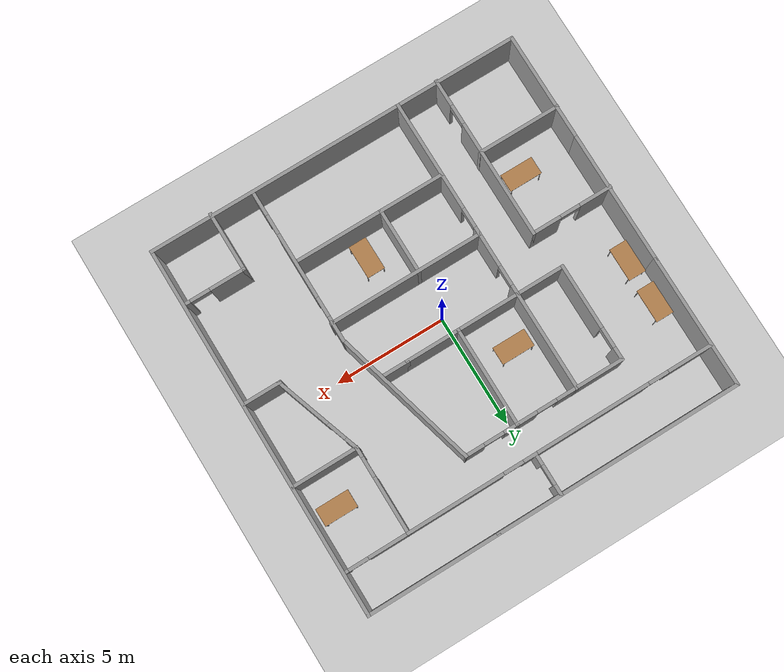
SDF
<sdf version="1.7">
 <world name="default">
  <light name="sun" type="directional">
   <pose>0 0 10 0 -0 0</pose>
   <diffuse>0.8 0.8 0.8 1</diffuse>
   <specular>0.2 0.2 0.2 1</specular>
   <attenuation>
    <range>1000</range>
    <constant>0.9</constant>
    <linear>0.01</linear>
    <quadratic>0.001</quadratic>
   </attenuation>
   <direction>-0.5 0.1 -0.9</direction>
   <spot><inner_angle>0</inner_angle><outer_angle>0</outer_angle><falloff>0</falloff></spot>
  </light>
  <model name="ground_plane">
   <static>1</static>
   <link name="link">
    <collision name="collision">
     <geometry><plane><normal>0 0 1</normal><size>100 100</size></plane></geometry>
     <surface><friction><ode><mu>100</mu><mu2>50</mu2></ode></friction></surface>
    </collision>
    <visual name="visual">
     <cast_shadows>0</cast_shadows>
     <geometry><plane><normal>0 0 1</normal><size>100 100</size></plane></geometry>
     <material>
      <script><uri>file://media/materials/scripts/gazebo.material</uri><name>Gazebo/Grey</name></script>
     </material>
    </visual>
   </link>
  </model>
  <gravity>0 0 -9.8</gravity>
  <magnetic_field>6e-06 2.3e-05 -4.2e-05</magnetic_field>
  <atmosphere type="adiabatic"/>
  <physics name="default_physics" default="0" type="ode">
   <max_step_size>0.001</max_step_size>
   <real_time_factor>1</real_time_factor>
   <real_time_update_rate>1000</real_time_update_rate>
  </physics>
  <scene><ambient>0.4 0.4 0.4 1</ambient><background>0.7 0.7 0.7 1</background><shadows>1</shadows></scene>
  <spherical_coordinates>
   <surface_model>EARTH_WGS84</surface_model>
   <latitude_deg>0</latitude_deg>
   <longitude_deg>0</longitude_deg>
   <elevation>0</elevation>
   <heading_deg>0</heading_deg>
  </spherical_coordinates>
  <model name="clinic">
   <pose>0.1393 0.22342 0 0 -0 0</pose>
   <link name="Wall_101">
    <collision name="Wall_101_Collision">
     <geometry><box><size>3.5 0.15 2.5</size></box></geometry>
     <pose>0 0 1.25 0 -0 0</pose>
    </collision>
    <visual name="Wall_101_Visual">
     <pose>0 0 1.25 0 -0 0</pose>
     <geometry><box><size>3.5 0.15 2.5</size></box></geometry>
     <material>
      <script><uri>file://media/materials/scripts/gazebo.material</uri><name>Gazebo/Grey</name></script>
      <ambient>1 1 1 1</ambient>
     </material>
     <meta><layer>0</layer></meta>
    </visual>
    <pose>-3.00153 -6.58035 0 0 -0 -1.5708</pose>
   </link>
   <link name="Wall_105">
    <pose>3.80231 -5.13793 0 0 -0 -1.5708</pose>
    <visual name="Wall_105_Visual_0">
     <pose>-2.95822 0 1.25 0 -0 0</pose>
     <geometry><box><size>0.333556 0.15 2.5</size></box></geometry>
     <material>
      <script><uri>file://media/materials/scripts/gazebo.material</uri><name>Gazebo/Grey</name></script>
      <ambient>1 1 1 1</ambient>
     </material>
     <meta><layer>0</layer></meta>
    </visual>
    <collision name="Wall_105_Collision_0">
     <geometry><box><size>0.333556 0.15 2.5</size></box></geometry>
     <pose>-2.95822 0 1.25 0 -0 0</pose>
    </collision>
    <visual name="Wall_105_Visual_1">
     <pose>-0.393618 0 1.25 0 -0 0</pose>
     <geometry><box><size>2.99565 0.15 2.5</size></box></geometry>
     <material>
      <script><uri>file://media/materials/scripts/gazebo.material</uri><name>Gazebo/Grey</name></script>
      <ambient>1 1 1 1</ambient>
     </material>
     <meta><layer>0</layer></meta>
    </visual>
    <collision name="Wall_105_Collision_1">
     <geometry><box><size>2.99565 0.15 2.5</size></box></geometry>
     <pose>-0.393618 0 1.25 0 -0 0</pose>
    </collision>
    <visual name="Wall_105_Visual_2">
     <pose>2.5646 0 1.25 0 -0 0</pose>
     <geometry><box><size>1.12079 0.15 2.5</size></box></geometry>
     <material>
      <script><uri>file://media/materials/scripts/gazebo.material</uri><name>Gazebo/Grey</name></script>
      <ambient>1 1 1 1</ambient>
     </material>
     <meta><layer>0</layer></meta>
    </visual>
    <collision name="Wall_105_Collision_2">
     <geometry><box><size>1.12079 0.15 2.5</size></box></geometry>
     <pose>2.5646 0 1.25 0 -0 0</pose>
    </collision>
    <visual name="Wall_105_Visual_3">
     <pose>-2.34144 0 2.25 0 -0 0</pose>
     <geometry><box><size>0.9 0.15 0.5</size></box></geometry>
     <material>
      <script><uri>file://media/materials/scripts/gazebo.material</uri><name>Gazebo/Grey</name></script>
      <ambient>1 1 1 1</ambient>
     </material>
     <meta><layer>0</layer></meta>
    </visual>
    <collision name="Wall_105_Collision_3">
     <geometry><box><size>0.9 0.15 0.5</size></box></geometry>
     <pose>-2.34144 0 2.25 0 -0 0</pose>
    </collision>
    <visual name="Wall_105_Visual_4">
     <pose>1.55421 0 2.25 0 -0 0</pose>
     <geometry><box><size>0.9 0.15 0.5</size></box></geometry>
     <material>
      <script><uri>file://media/materials/scripts/gazebo.material</uri><name>Gazebo/Grey</name></script>
      <ambient>1 1 1 1</ambient>
     </material>
     <meta><layer>0</layer></meta>
    </visual>
    <collision name="Wall_105_Collision_4">
     <geometry><box><size>0.9 0.15 0.5</size></box></geometry>
     <pose>1.55421 0 2.25 0 -0 0</pose>
    </collision>
   </link>
   <link name="Wall_107">
    <collision name="Wall_107_Collision">
     <geometry><box><size>4 0.15 2.5</size></box></geometry>
     <pose>0 0 1.25 0 -0 0</pose>
    </collision>
    <visual name="Wall_107_Visual">
     <pose>0 0 1.25 0 -0 0</pose>
     <geometry><box><size>4 0.15 2.5</size></box></geometry>
     <material>
      <script><uri>file://media/materials/scripts/gazebo.material</uri><name>Gazebo/Grey</name></script>
      <ambient>1 1 1 1</ambient>
     </material>
     <meta><layer>0</layer></meta>
    </visual>
    <pose>1.77347 -4.90536 0 0 -0 0</pose>
   </link>
   <link name="Wall_111">
    <pose>-6.64411 -0.95506 0 0 -0 0</pose>
    <visual name="Wall_111_Visual_0">
     <pose>-1.12575 0 1.25 0 -0 0</pose>
     <geometry><box><size>1.49849 0.15 2.5</size></box></geometry>
     <material>
      <script><uri>file://media/materials/scripts/gazebo.material</uri><name>Gazebo/Grey</name></script>
      <ambient>1 1 1 1</ambient>
     </material>
     <meta><layer>0</layer></meta>
    </visual>
    <collision name="Wall_111_Collision_0">
     <geometry><box><size>1.49849 0.15 2.5</size></box></geometry>
     <pose>-1.12575 0 1.25 0 -0 0</pose>
    </collision>
    <visual name="Wall_111_Visual_1">
     <pose>1.19925 0 1.25 0 -0 0</pose>
     <geometry><box><size>1.35151 0.15 2.5</size></box></geometry>
     <material>
      <script><uri>file://media/materials/scripts/gazebo.material</uri><name>Gazebo/Grey</name></script>
      <ambient>1 1 1 1</ambient>
     </material>
     <meta><layer>0</layer></meta>
    </visual>
    <collision name="Wall_111_Collision_1">
     <geometry><box><size>1.35151 0.15 2.5</size></box></geometry>
     <pose>1.19925 0 1.25 0 -0 0</pose>
    </collision>
    <visual name="Wall_111_Visual_2">
     <pose>0.073493 0 2.25 0 -0 0</pose>
     <geometry><box><size>0.9 0.15 0.5</size></box></geometry>
     <material>
      <script><uri>file://media/materials/scripts/gazebo.material</uri><name>Gazebo/Grey</name></script>
      <ambient>1 1 1 1</ambient>
     </material>
     <meta><layer>0</layer></meta>
    </visual>
    <collision name="Wall_111_Collision_2">
     <geometry><box><size>0.9 0.15 0.5</size></box></geometry>
     <pose>0.073493 0 2.25 0 -0 0</pose>
    </collision>
   </link>
   <link name="Wall_112">
    <pose>-4.84411 -4.63006 0 0 -0 -1.5708</pose>
    <visual name="Wall_112_Visual_0">
     <pose>-1.06896 0 1.25 0 -0 0</pose>
     <geometry><box><size>5.36208 0.15 2.5</size></box></geometry>
     <material>
      <script><uri>file://media/materials/scripts/gazebo.material</uri><name>Gazebo/Grey</name></script>
      <ambient>1 1 1 1</ambient>
     </material>
     <meta><layer>0</layer></meta>
    </visual>
    <collision name="Wall_112_Collision_0">
     <geometry><box><size>5.36208 0.15 2.5</size></box></geometry>
     <pose>-1.06896 0 1.25 0 -0 0</pose>
    </collision>
    <visual name="Wall_112_Visual_1">
     <pose>3.13104 0 1.25 0 -0 0</pose>
     <geometry><box><size>1.23792 0.15 2.5</size></box></geometry>
     <material>
      <script><uri>file://media/materials/scripts/gazebo.material</uri><name>Gazebo/Grey</name></script>
      <ambient>1 1 1 1</ambient>
     </material>
     <meta><layer>0</layer></meta>
    </visual>
    <collision name="Wall_112_Collision_1">
     <geometry><box><size>1.23792 0.15 2.5</size></box></geometry>
     <pose>3.13104 0 1.25 0 -0 0</pose>
    </collision>
    <visual name="Wall_112_Visual_2">
     <pose>2.06208 0 2.25 0 -0 0</pose>
     <geometry><box><size>0.9 0.15 0.5</size></box></geometry>
     <material>
      <script><uri>file://media/materials/scripts/gazebo.material</uri><name>Gazebo/Grey</name></script>
      <ambient>1 1 1 1</ambient>
     </material>
     <meta><layer>0</layer></meta>
    </visual>
    <collision name="Wall_112_Collision_2">
     <geometry><box><size>0.9 0.15 0.5</size></box></geometry>
     <pose>2.06208 0 2.25 0 -0 0</pose>
    </collision>
   </link>
   <link name="Wall_116">
    <collision name="Wall_116_Collision">
     <geometry><box><size>3.75 0.15 2.5</size></box></geometry>
     <pose>0 0 1.25 0 -0 0</pose>
    </collision>
    <visual name="Wall_116_Visual">
     <pose>0 0 1.25 0 -0 0</pose>
     <geometry><box><size>3.75 0.15 2.5</size></box></geometry>
     <material>
      <script><uri>file://media/materials/scripts/gazebo.material</uri><name>Gazebo/Grey</name></script>
      <ambient>1 1 1 1</ambient>
     </material>
     <meta><layer>0</layer></meta>
    </visual>
    <pose>-6.6255 -4.86753 0 0 -0 0</pose>
   </link>
   <link name="Wall_123">
    <pose>6.98904 -5.73718 0 0 -0 0</pose>
    <visual name="Wall_123_Visual_0">
     <pose>-0.558642 0 1.25 0 -0 0</pose>
     <geometry><box><size>1.63272 0.15 2.5</size></box></geometry>
     <material>
      <script><uri>file://media/materials/scripts/gazebo.material</uri><name>Gazebo/Grey</name></script>
      <ambient>1 1 1 1</ambient>
     </material>
     <meta><layer>0</layer></meta>
    </visual>
    <collision name="Wall_123_Collision_0">
     <geometry><box><size>1.63272 0.15 2.5</size></box></geometry>
     <pose>-0.558642 0 1.25 0 -0 0</pose>
    </collision>
    <visual name="Wall_123_Visual_1">
     <pose>1.26636 0 1.25 0 -0 0</pose>
     <geometry><box><size>0.217284 0.15 2.5</size></box></geometry>
     <material>
      <script><uri>file://media/materials/scripts/gazebo.material</uri><name>Gazebo/Grey</name></script>
      <ambient>1 1 1 1</ambient>
     </material>
     <meta><layer>0</layer></meta>
    </visual>
    <collision name="Wall_123_Collision_1">
     <geometry><box><size>0.217284 0.15 2.5</size></box></geometry>
     <pose>1.26636 0 1.25 0 -0 0</pose>
    </collision>
    <visual name="Wall_123_Visual_2">
     <pose>0.707716 0 2.25 0 -0 0</pose>
     <geometry><box><size>0.9 0.15 0.5</size></box></geometry>
     <material>
      <script><uri>file://media/materials/scripts/gazebo.material</uri><name>Gazebo/Grey</name></script>
      <ambient>1 1 1 1</ambient>
     </material>
     <meta><layer>0</layer></meta>
    </visual>
    <collision name="Wall_123_Collision_2">
     <geometry><box><size>0.9 0.15 0.5</size></box></geometry>
     <pose>0.707716 0 2.25 0 -0 0</pose>
    </collision>
   </link>
   <link name="Wall_126">
    <collision name="Wall_126_Collision">
     <geometry><box><size>2.75 0.15 2.5</size></box></geometry>
     <pose>0 0 1.25 0 -0 0</pose>
    </collision>
    <visual name="Wall_126_Visual">
     <pose>0 0 1.25 0 -0 0</pose>
     <geometry><box><size>2.75 0.15 2.5</size></box></geometry>
     <material>
      <script><uri>file://media/materials/scripts/gazebo.material</uri><name>Gazebo/Grey</name></script>
      <ambient>1 1 1 1</ambient>
     </material>
     <meta><layer>0</layer></meta>
    </visual>
    <pose>5.68904 -7.03718 0 0 -0 -1.5708</pose>
   </link>
   <link name="Wall_17">
    <pose>-0.255894 7.41218 0 0 -0 1.5708</pose>
    <visual name="Wall_17_Visual_0">
     <pose>-0.712032 0 1.25 0 -0 0</pose>
     <geometry><box><size>0.575935 0.15 2.5</size></box></geometry>
     <material>
      <script><uri>file://media/materials/scripts/gazebo.material</uri><name>Gazebo/Grey</name></script>
      <ambient>1 1 1 1</ambient>
     </material>
     <meta><layer>0</layer></meta>
    </visual>
    <collision name="Wall_17_Collision_0">
     <geometry><box><size>0.575935 0.15 2.5</size></box></geometry>
     <pose>-0.712032 0 1.25 0 -0 0</pose>
    </collision>
    <visual name="Wall_17_Visual_1">
     <pose>0.737968 0 1.25 0 -0 0</pose>
     <geometry><box><size>0.524065 0.15 2.5</size></box></geometry>
     <material>
      <script><uri>file://media/materials/scripts/gazebo.material</uri><name>Gazebo/Grey</name></script>
      <ambient>1 1 1 1</ambient>
     </material>
     <meta><layer>0</layer></meta>
    </visual>
    <collision name="Wall_17_Collision_1">
     <geometry><box><size>0.524065 0.15 2.5</size></box></geometry>
     <pose>0.737968 0 1.25 0 -0 0</pose>
    </collision>
    <visual name="Wall_17_Visual_2">
     <pose>0.025935 0 2.25 0 -0 0</pose>
     <geometry><box><size>0.9 0.15 0.5</size></box></geometry>
     <material>
      <script><uri>file://media/materials/scripts/gazebo.material</uri><name>Gazebo/Grey</name></script>
      <ambient>1 1 1 1</ambient>
     </material>
     <meta><layer>0</layer></meta>
    </visual>
    <collision name="Wall_17_Collision_2">
     <geometry><box><size>0.9 0.15 0.5</size></box></geometry>
     <pose>0.025935 0 2.25 0 -0 0</pose>
    </collision>
   </link>
   <link name="Wall_18">
    <collision name="Wall_18_Collision">
     <geometry><box><size>3 0.15 2.5</size></box></geometry>
     <pose>0 0 1.25 0 -0 0</pose>
    </collision>
    <visual name="Wall_18_Visual">
     <pose>0 0 1.25 0 -0 0</pose>
     <geometry><box><size>3 0.15 2.5</size></box></geometry>
     <material>
      <script><uri>file://media/materials/scripts/gazebo.material</uri><name>Gazebo/Grey</name></script>
      <ambient>1 1 1 1</ambient>
     </material>
     <meta><layer>0</layer></meta>
    </visual>
    <pose>1.16911 8.33718 0 0 -0 0</pose>
   </link>
   <link name="Wall_26">
    <collision name="Wall_26_Collision">
     <geometry><box><size>5 0.15 2.5</size></box></geometry>
     <pose>0 0 1.25 0 -0 0</pose>
    </collision>
    <visual name="Wall_26_Visual">
     <pose>0 0 1.25 0 -0 0</pose>
     <geometry><box><size>5 0.15 2.5</size></box></geometry>
     <material>
      <script><uri>file://media/materials/scripts/gazebo.material</uri><name>Gazebo/Grey</name></script>
      <ambient>1 1 1 1</ambient>
     </material>
     <meta><layer>0</layer></meta>
    </visual>
    <pose>-8.40589 -5.78782 0 0 -0 1.5708</pose>
   </link>
   <link name="Wall_28">
    <collision name="Wall_28_Collision">
     <geometry><box><size>6 0.15 2.5</size></box></geometry>
     <pose>0 0 1.25 0 -0 0</pose>
    </collision>
    <visual name="Wall_28_Visual">
     <pose>0 0 1.25 0 -0 0</pose>
     <geometry><box><size>6 0.15 2.5</size></box></geometry>
     <material>
      <script><uri>file://media/materials/scripts/gazebo.material</uri><name>Gazebo/Grey</name></script>
      <ambient>1 1 1 1</ambient>
     </material>
     <meta><layer>0</layer></meta>
    </visual>
    <pose>-8.40589 -0.43782 0 0 -0 1.5708</pose>
   </link>
   <link name="Wall_31">
    <collision name="Wall_31_Collision">
     <geometry><box><size>6 0.15 2.5</size></box></geometry>
     <pose>0 0 1.25 0 -0 0</pose>
    </collision>
    <visual name="Wall_31_Visual">
     <pose>0 0 1.25 0 -0 0</pose>
     <geometry><box><size>6 0.15 2.5</size></box></geometry>
     <material>
      <script><uri>file://media/materials/scripts/gazebo.material</uri><name>Gazebo/Grey</name></script>
      <ambient>1 1 1 1</ambient>
     </material>
     <meta><layer>0</layer></meta>
    </visual>
    <pose>-8.40589 5.41218 0 0 -0 1.5708</pose>
   </link>
   <link name="Wall_32">
    <collision name="Wall_32_Collision">
     <geometry><box><size>8.3 0.15 2.5</size></box></geometry>
     <pose>0 0 1.25 0 -0 0</pose>
    </collision>
    <visual name="Wall_32_Visual">
     <pose>0 0 1.25 0 -0 0</pose>
     <geometry><box><size>8.3 0.15 2.5</size></box></geometry>
     <material>
      <script><uri>file://media/materials/scripts/gazebo.material</uri><name>Gazebo/Grey</name></script>
      <ambient>1 1 1 1</ambient>
     </material>
     <meta><layer>0</layer></meta>
    </visual>
    <pose>-4.33089 8.33718 0 0 -0 0</pose>
   </link>
   <link name="Wall_34">
    <collision name="Wall_34_Collision">
     <geometry><box><size>6 0.15 2.5</size></box></geometry>
     <pose>0 0 1.25 0 -0 0</pose>
    </collision>
    <visual name="Wall_34_Visual">
     <pose>0 0 1.25 0 -0 0</pose>
     <geometry><box><size>6 0.15 2.5</size></box></geometry>
     <material>
      <script><uri>file://media/materials/scripts/gazebo.material</uri><name>Gazebo/Grey</name></script>
      <ambient>1 1 1 1</ambient>
     </material>
     <meta><layer>0</layer></meta>
    </visual>
    <pose>5.51911 8.33718 0 0 -0 0</pose>
   </link>
   <link name="Wall_40">
    <pose>5.53497 4.56283 0 0 -0 -1.5708</pose>
    <visual name="Wall_40_Visual_0">
     <pose>-0.699417 0 1.25 0 -0 0</pose>
     <geometry><box><size>2.60117 0.15 2.5</size></box></geometry>
     <material>
      <script><uri>file://media/materials/scripts/gazebo.material</uri><name>Gazebo/Grey</name></script>
      <ambient>1 1 1 1</ambient>
     </material>
     <meta><layer>0</layer></meta>
    </visual>
    <collision name="Wall_40_Collision_0">
     <geometry><box><size>2.60117 0.15 2.5</size></box></geometry>
     <pose>-0.699417 0 1.25 0 -0 0</pose>
    </collision>
    <visual name="Wall_40_Visual_1">
     <pose>1.75058 0 1.25 0 -0 0</pose>
     <geometry><box><size>0.498833 0.15 2.5</size></box></geometry>
     <material>
      <script><uri>file://media/materials/scripts/gazebo.material</uri><name>Gazebo/Grey</name></script>
      <ambient>1 1 1 1</ambient>
     </material>
     <meta><layer>0</layer></meta>
    </visual>
    <collision name="Wall_40_Collision_1">
     <geometry><box><size>0.498833 0.15 2.5</size></box></geometry>
     <pose>1.75058 0 1.25 0 -0 0</pose>
    </collision>
    <visual name="Wall_40_Visual_2">
     <pose>1.05117 0 2.25 0 -0 0</pose>
     <geometry><box><size>0.9 0.15 0.5</size></box></geometry>
     <material>
      <script><uri>file://media/materials/scripts/gazebo.material</uri><name>Gazebo/Grey</name></script>
      <ambient>1 1 1 1</ambient>
     </material>
     <meta><layer>0</layer></meta>
    </visual>
    <collision name="Wall_40_Collision_2">
     <geometry><box><size>0.9 0.15 0.5</size></box></geometry>
     <pose>1.05117 0 2.25 0 -0 0</pose>
    </collision>
   </link>
   <link name="Wall_41">
    <collision name="Wall_41_Collision">
     <geometry><box><size>3 0.15 2.5</size></box></geometry>
     <pose>0 0 1.25 0 -0 0</pose>
    </collision>
    <visual name="Wall_41_Visual">
     <pose>0 0 1.25 0 -0 0</pose>
     <geometry><box><size>3 0.15 2.5</size></box></geometry>
     <material>
      <script><uri>file://media/materials/scripts/gazebo.material</uri><name>Gazebo/Grey</name></script>
      <ambient>1 1 1 1</ambient>
     </material>
     <meta><layer>0</layer></meta>
    </visual>
    <pose>6.95997 2.63783 0 0 -0 0</pose>
   </link>
   <link name="Wall_44">
    <collision name="Wall_44_Collision">
     <geometry><box><size>16.75 0.15 2.5</size></box></geometry>
     <pose>0 0 1.25 0 -0 0</pose>
    </collision>
    <visual name="Wall_44_Visual">
     <pose>0 0 1.25 0 -0 0</pose>
     <geometry><box><size>16.75 0.15 2.5</size></box></geometry>
     <material>
      <script><uri>file://media/materials/scripts/gazebo.material</uri><name>Gazebo/Grey</name></script>
      <ambient>1 1 1 1</ambient>
     </material>
     <meta><layer>0</layer></meta>
    </visual>
    <pose>8.44411 0.037179 0 0 -0 -1.5708</pose>
   </link>
   <link name="Wall_45">
    <collision name="Wall_45_Collision">
     <geometry><box><size>17 0.15 2.5</size></box></geometry>
     <pose>0 0 1.25 0 -0 0</pose>
    </collision>
    <visual name="Wall_45_Visual">
     <pose>0 0 1.25 0 -0 0</pose>
     <geometry><box><size>17 0.15 2.5</size></box></geometry>
     <material>
      <script><uri>file://media/materials/scripts/gazebo.material</uri><name>Gazebo/Grey</name></script>
      <ambient>1 1 1 1</ambient>
     </material>
     <meta><layer>0</layer></meta>
    </visual>
    <pose>0.019106 -8.26282 0 0 -0 3.14159</pose>
   </link>
   <link name="Wall_48">
    <pose>6.95997 6.48783 0 0 -0 0</pose>
    <visual name="Wall_48_Visual_0">
     <pose>-0.566156 0 1.25 0 -0 0</pose>
     <geometry><box><size>1.86769 0.15 2.5</size></box></geometry>
     <material>
      <script><uri>file://media/materials/scripts/gazebo.material</uri><name>Gazebo/Grey</name></script>
      <ambient>1 1 1 1</ambient>
     </material>
     <meta><layer>0</layer></meta>
    </visual>
    <collision name="Wall_48_Collision_0">
     <geometry><box><size>1.86769 0.15 2.5</size></box></geometry>
     <pose>-0.566156 0 1.25 0 -0 0</pose>
    </collision>
    <visual name="Wall_48_Visual_1">
     <pose>1.38384 0 1.25 0 -0 0</pose>
     <geometry><box><size>0.232312 0.15 2.5</size></box></geometry>
     <material>
      <script><uri>file://media/materials/scripts/gazebo.material</uri><name>Gazebo/Grey</name></script>
      <ambient>1 1 1 1</ambient>
     </material>
     <meta><layer>0</layer></meta>
    </visual>
    <collision name="Wall_48_Collision_1">
     <geometry><box><size>0.232312 0.15 2.5</size></box></geometry>
     <pose>1.38384 0 1.25 0 -0 0</pose>
    </collision>
    <visual name="Wall_48_Visual_2">
     <pose>0.817688 0 2.25 0 -0 0</pose>
     <geometry><box><size>0.9 0.15 0.5</size></box></geometry>
     <material>
      <script><uri>file://media/materials/scripts/gazebo.material</uri><name>Gazebo/Grey</name></script>
      <ambient>1 1 1 1</ambient>
     </material>
     <meta><layer>0</layer></meta>
    </visual>
    <collision name="Wall_48_Collision_2">
     <geometry><box><size>0.9 0.15 0.5</size></box></geometry>
     <pose>0.817688 0 2.25 0 -0 0</pose>
    </collision>
   </link>
   <link name="Wall_50">
    <pose>2.63954 6.4875 0 0 -0 -3.14148</pose>
    <visual name="Wall_50_Visual_0">
     <pose>-0.766071 0 1.25 0 -0 0</pose>
     <geometry><box><size>4.40875 0.15 2.5</size></box></geometry>
     <material>
      <script><uri>file://media/materials/scripts/gazebo.material</uri><name>Gazebo/Grey</name></script>
      <ambient>1 1 1 1</ambient>
     </material>
     <meta><layer>0</layer></meta>
    </visual>
    <collision name="Wall_50_Collision_0">
     <geometry><box><size>4.40875 0.15 2.5</size></box></geometry>
     <pose>-0.766071 0 1.25 0 -0 0</pose>
    </collision>
    <visual name="Wall_50_Visual_1">
     <pose>2.65437 0 1.25 0 -0 0</pose>
     <geometry><box><size>0.632142 0.15 2.5</size></box></geometry>
     <material>
      <script><uri>file://media/materials/scripts/gazebo.material</uri><name>Gazebo/Grey</name></script>
      <ambient>1 1 1 1</ambient>
     </material>
     <meta><layer>0</layer></meta>
    </visual>
    <collision name="Wall_50_Collision_1">
     <geometry><box><size>0.632142 0.15 2.5</size></box></geometry>
     <pose>2.65437 0 1.25 0 -0 0</pose>
    </collision>
    <visual name="Wall_50_Visual_2">
     <pose>1.8883 0 2.25 0 -0 0</pose>
     <geometry><box><size>0.9 0.15 0.5</size></box></geometry>
     <material>
      <script><uri>file://media/materials/scripts/gazebo.material</uri><name>Gazebo/Grey</name></script>
      <ambient>1 1 1 1</ambient>
     </material>
     <meta><layer>0</layer></meta>
    </visual>
    <collision name="Wall_50_Collision_2">
     <geometry><box><size>0.9 0.15 0.5</size></box></geometry>
     <pose>1.8883 0 2.25 0 -0 0</pose>
    </collision>
   </link>
   <link name="Wall_52">
    <pose>6.16655 0.75794 0 0 -0 -1.24668</pose>
    <visual name="Wall_52_Visual_0">
     <pose>-1.74079 0 1.25 0 -0 0</pose>
     <geometry><box><size>0.634718 0.15 2.5</size></box></geometry>
     <material>
      <script><uri>file://media/materials/scripts/gazebo.material</uri><name>Gazebo/Grey</name></script>
      <ambient>1 1 1 1</ambient>
     </material>
     <meta><layer>0</layer></meta>
    </visual>
    <collision name="Wall_52_Collision_0">
     <geometry><box><size>0.634718 0.15 2.5</size></box></geometry>
     <pose>-1.74079 0 1.25 0 -0 0</pose>
    </collision>
    <visual name="Wall_52_Visual_1">
     <pose>0.767359 0 1.25 0 -0 0</pose>
     <geometry><box><size>2.58157 0.15 2.5</size></box></geometry>
     <material>
      <script><uri>file://media/materials/scripts/gazebo.material</uri><name>Gazebo/Grey</name></script>
      <ambient>1 1 1 1</ambient>
     </material>
     <meta><layer>0</layer></meta>
    </visual>
    <collision name="Wall_52_Collision_1">
     <geometry><box><size>2.58157 0.15 2.5</size></box></geometry>
     <pose>0.767359 0 1.25 0 -0 0</pose>
    </collision>
    <visual name="Wall_52_Visual_2">
     <pose>-0.973427 0 2.25 0 -0 0</pose>
     <geometry><box><size>0.9 0.15 0.5</size></box></geometry>
     <material>
      <script><uri>file://media/materials/scripts/gazebo.material</uri><name>Gazebo/Grey</name></script>
      <ambient>1 1 1 1</ambient>
     </material>
     <meta><layer>0</layer></meta>
    </visual>
    <collision name="Wall_52_Collision_2">
     <geometry><box><size>0.9 0.15 0.5</size></box></geometry>
     <pose>-0.973427 0 2.25 0 -0 0</pose>
    </collision>
   </link>
   <link name="Wall_53">
    <collision name="Wall_53_Collision">
     <geometry><box><size>1.75 0.15 2.5</size></box></geometry>
     <pose>0 0 1.25 0 -0 0</pose>
    </collision>
    <visual name="Wall_53_Visual">
     <pose>0 0 1.25 0 -0 0</pose>
     <geometry><box><size>1.75 0.15 2.5</size></box></geometry>
     <material>
      <script><uri>file://media/materials/scripts/gazebo.material</uri><name>Gazebo/Grey</name></script>
      <ambient>1 1 1 1</ambient>
     </material>
     <meta><layer>0</layer></meta>
    </visual>
    <pose>7.56805 -1.12195 0 0 -0 0</pose>
   </link>
   <link name="Wall_61">
    <pose>0.919106 5.13718 0 0 -0 0</pose>
    <visual name="Wall_61_Visual_0">
     <pose>-0.907916 0 1.25 0 -0 0</pose>
     <geometry><box><size>0.684217 0.15 2.5</size></box></geometry>
     <material>
      <script><uri>file://media/materials/scripts/gazebo.material</uri><name>Gazebo/Grey</name></script>
      <ambient>1 1 1 1</ambient>
     </material>
     <meta><layer>0</layer></meta>
    </visual>
    <collision name="Wall_61_Collision_0">
     <geometry><box><size>0.684217 0.15 2.5</size></box></geometry>
     <pose>-0.907916 0 1.25 0 -0 0</pose>
    </collision>
    <visual name="Wall_61_Visual_1">
     <pose>0.792108 0 1.25 0 -0 0</pose>
     <geometry><box><size>0.915831 0.15 2.5</size></box></geometry>
     <material>
      <script><uri>file://media/materials/scripts/gazebo.material</uri><name>Gazebo/Grey</name></script>
      <ambient>1 1 1 1</ambient>
     </material>
     <meta><layer>0</layer></meta>
    </visual>
    <collision name="Wall_61_Collision_1">
     <geometry><box><size>0.915831 0.15 2.5</size></box></geometry>
     <pose>0.792108 0 1.25 0 -0 0</pose>
    </collision>
    <visual name="Wall_61_Visual_2">
     <pose>-0.115807 0 2.25 0 -0 0</pose>
     <geometry><box><size>0.9 0.15 0.5</size></box></geometry>
     <material>
      <script><uri>file://media/materials/scripts/gazebo.material</uri><name>Gazebo/Grey</name></script>
      <ambient>1 1 1 1</ambient>
     </material>
     <meta><layer>0</layer></meta>
    </visual>
    <collision name="Wall_61_Collision_2">
     <geometry><box><size>0.9 0.15 0.5</size></box></geometry>
     <pose>-0.115807 0 2.25 0 -0 0</pose>
    </collision>
   </link>
   <link name="Wall_68">
    <collision name="Wall_68_Collision">
     <geometry><box><size>4.5 0.15 2.5</size></box></geometry>
     <pose>0 0 1.25 0 -0 0</pose>
    </collision>
    <visual name="Wall_68_Visual">
     <pose>0 0 1.25 0 -0 0</pose>
     <geometry><box><size>4.5 0.15 2.5</size></box></geometry>
     <material>
      <script><uri>file://media/materials/scripts/gazebo.material</uri><name>Gazebo/Grey</name></script>
      <ambient>1 1 1 1</ambient>
     </material>
     <meta><layer>0</layer></meta>
    </visual>
    <pose>-0.255894 2.96218 0 0 -0 -1.5708</pose>
   </link>
   <link name="Wall_69">
    <collision name="Wall_69_Collision">
     <geometry><box><size>2.5 0.15 2.5</size></box></geometry>
     <pose>0 0 1.25 0 -0 0</pose>
    </collision>
    <visual name="Wall_69_Visual">
     <pose>0 0 1.25 0 -0 0</pose>
     <geometry><box><size>2.5 0.15 2.5</size></box></geometry>
     <material>
      <script><uri>file://media/materials/scripts/gazebo.material</uri><name>Gazebo/Grey</name></script>
      <ambient>1 1 1 1</ambient>
     </material>
     <meta><layer>0</layer></meta>
    </visual>
    <pose>0.919106 0.787179 0 0 -0 0</pose>
   </link>
   <link name="Wall_75">
    <collision name="Wall_75_Collision">
     <geometry><box><size>6.75 0.15 2.5</size></box></geometry>
     <pose>0 0 1.25 0 -0 0</pose>
    </collision>
    <visual name="Wall_75_Visual">
     <pose>0 0 1.25 0 -0 0</pose>
     <geometry><box><size>6.75 0.15 2.5</size></box></geometry>
     <material>
      <script><uri>file://media/materials/scripts/gazebo.material</uri><name>Gazebo/Grey</name></script>
      <ambient>1 1 1 1</ambient>
     </material>
     <meta><layer>0</layer></meta>
    </visual>
    <pose>2.94821 1.94962 0 0 -0 -1.309</pose>
   </link>
   <link name="Wall_77">
    <collision name="Wall_77_Collision">
     <geometry><box><size>1.25 0.15 2.5</size></box></geometry>
     <pose>0 0 1.25 0 -0 0</pose>
    </collision>
    <visual name="Wall_77_Visual">
     <pose>0 0 1.25 0 -0 0</pose>
     <geometry><box><size>1.25 0.15 2.5</size></box></geometry>
     <material>
      <script><uri>file://media/materials/scripts/gazebo.material</uri><name>Gazebo/Grey</name></script>
      <ambient>1 1 1 1</ambient>
     </material>
     <meta><layer>0</layer></meta>
    </visual>
    <pose>2.64411 0.787179 0 0 -0 0</pose>
   </link>
   <link name="Wall_80">
    <pose>-4.30589 6.48718 0 0 -0 3.14159</pose>
    <visual name="Wall_80_Visual_0">
     <pose>-1.4724 0 1.25 0 -0 0</pose>
     <geometry><box><size>5.3052 0.15 2.5</size></box></geometry>
     <material>
      <script><uri>file://media/materials/scripts/gazebo.material</uri><name>Gazebo/Grey</name></script>
      <ambient>1 1 1 1</ambient>
     </material>
     <meta><layer>0</layer></meta>
    </visual>
    <collision name="Wall_80_Collision_0">
     <geometry><box><size>5.3052 0.15 2.5</size></box></geometry>
     <pose>-1.4724 0 1.25 0 -0 0</pose>
    </collision>
    <visual name="Wall_80_Visual_1">
     <pose>3.1026 0 1.25 0 -0 0</pose>
     <geometry><box><size>2.04481 0.15 2.5</size></box></geometry>
     <material>
      <script><uri>file://media/materials/scripts/gazebo.material</uri><name>Gazebo/Grey</name></script>
      <ambient>1 1 1 1</ambient>
     </material>
     <meta><layer>0</layer></meta>
    </visual>
    <collision name="Wall_80_Collision_1">
     <geometry><box><size>2.04481 0.15 2.5</size></box></geometry>
     <pose>3.1026 0 1.25 0 -0 0</pose>
    </collision>
    <visual name="Wall_80_Visual_2">
     <pose>1.6302 0 2.25 0 -0 0</pose>
     <geometry><box><size>0.9 0.15 0.5</size></box></geometry>
     <material>
      <script><uri>file://media/materials/scripts/gazebo.material</uri><name>Gazebo/Grey</name></script>
      <ambient>1 1 1 1</ambient>
     </material>
     <meta><layer>0</layer></meta>
    </visual>
    <collision name="Wall_80_Collision_2">
     <geometry><box><size>0.9 0.15 0.5</size></box></geometry>
     <pose>1.6302 0 2.25 0 -0 0</pose>
    </collision>
   </link>
   <link name="Wall_82">
    <pose>-2.68089 5.13718 0 0 -0 3.14159</pose>
    <visual name="Wall_82_Visual_0">
     <pose>-1.99971 0 1.25 0 -0 0</pose>
     <geometry><box><size>1.0006 0.15 2.5</size></box></geometry>
     <material>
      <script><uri>file://media/materials/scripts/gazebo.material</uri><name>Gazebo/Grey</name></script>
      <ambient>1 1 1 1</ambient>
     </material>
     <meta><layer>0</layer></meta>
    </visual>
    <collision name="Wall_82_Collision_0">
     <geometry><box><size>1.0006 0.15 2.5</size></box></geometry>
     <pose>-1.99971 0 1.25 0 -0 0</pose>
    </collision>
    <visual name="Wall_82_Visual_1">
     <pose>0.950301 0 1.25 0 -0 0</pose>
     <geometry><box><size>3.09942 0.15 2.5</size></box></geometry>
     <material>
      <script><uri>file://media/materials/scripts/gazebo.material</uri><name>Gazebo/Grey</name></script>
      <ambient>1 1 1 1</ambient>
     </material>
     <meta><layer>0</layer></meta>
    </visual>
    <collision name="Wall_82_Collision_1">
     <geometry><box><size>3.09942 0.15 2.5</size></box></geometry>
     <pose>0.950301 0 1.25 0 -0 0</pose>
    </collision>
    <visual name="Wall_82_Visual_2">
     <pose>-1.04941 0 2.25 0 -0 0</pose>
     <geometry><box><size>0.9 0.15 0.5</size></box></geometry>
     <material>
      <script><uri>file://media/materials/scripts/gazebo.material</uri><name>Gazebo/Grey</name></script>
      <ambient>1 1 1 1</ambient>
     </material>
     <meta><layer>0</layer></meta>
    </visual>
    <collision name="Wall_82_Collision_2">
     <geometry><box><size>0.9 0.15 0.5</size></box></geometry>
     <pose>-1.04941 0 2.25 0 -0 0</pose>
    </collision>
   </link>
   <link name="Wall_83">
    <pose>-5.10589 2.96218 0 0 -0 -1.5708</pose>
    <visual name="Wall_83_Visual_0">
     <pose>-1.93154 0 1.25 0 -0 0</pose>
     <geometry><box><size>0.636927 0.15 2.5</size></box></geometry>
     <material>
      <script><uri>file://media/materials/scripts/gazebo.material</uri><name>Gazebo/Grey</name></script>
      <ambient>1 1 1 1</ambient>
     </material>
     <meta><layer>0</layer></meta>
    </visual>
    <collision name="Wall_83_Collision_0">
     <geometry><box><size>0.636927 0.15 2.5</size></box></geometry>
     <pose>-1.93154 0 1.25 0 -0 0</pose>
    </collision>
    <visual name="Wall_83_Visual_1">
     <pose>0.768464 0 1.25 0 -0 0</pose>
     <geometry><box><size>2.96307 0.15 2.5</size></box></geometry>
     <material>
      <script><uri>file://media/materials/scripts/gazebo.material</uri><name>Gazebo/Grey</name></script>
      <ambient>1 1 1 1</ambient>
     </material>
     <meta><layer>0</layer></meta>
    </visual>
    <collision name="Wall_83_Collision_1">
     <geometry><box><size>2.96307 0.15 2.5</size></box></geometry>
     <pose>0.768464 0 1.25 0 -0 0</pose>
    </collision>
    <visual name="Wall_83_Visual_2">
     <pose>-1.16307 0 2.25 0 -0 0</pose>
     <geometry><box><size>0.9 0.15 0.5</size></box></geometry>
     <material>
      <script><uri>file://media/materials/scripts/gazebo.material</uri><name>Gazebo/Grey</name></script>
      <ambient>1 1 1 1</ambient>
     </material>
     <meta><layer>0</layer></meta>
    </visual>
    <collision name="Wall_83_Collision_2">
     <geometry><box><size>0.9 0.15 0.5</size></box></geometry>
     <pose>-1.16307 0 2.25 0 -0 0</pose>
    </collision>
   </link>
   <link name="Wall_84">
    <collision name="Wall_84_Collision">
     <geometry><box><size>5 0.15 2.5</size></box></geometry>
     <pose>0 0 1.25 0 -0 0</pose>
    </collision>
    <visual name="Wall_84_Visual">
     <pose>0 0 1.25 0 -0 0</pose>
     <geometry><box><size>5 0.15 2.5</size></box></geometry>
     <material>
      <script><uri>file://media/materials/scripts/gazebo.material</uri><name>Gazebo/Grey</name></script>
      <ambient>1 1 1 1</ambient>
     </material>
     <meta><layer>0</layer></meta>
    </visual>
    <pose>-2.68089 0.787179 0 0 -0 0</pose>
   </link>
   <link name="Wall_86">
    <collision name="Wall_86_Collision">
     <geometry><box><size>4.5 0.15 2.5</size></box></geometry>
     <pose>0 0 1.25 0 -0 0</pose>
    </collision>
    <visual name="Wall_86_Visual">
     <pose>0 0 1.25 0 -0 0</pose>
     <geometry><box><size>4.5 0.15 2.5</size></box></geometry>
     <material>
      <script><uri>file://media/materials/scripts/gazebo.material</uri><name>Gazebo/Grey</name></script>
      <ambient>1 1 1 1</ambient>
     </material>
     <meta><layer>0</layer></meta>
    </visual>
    <pose>-3.00153 2.96964 0 0 -0 -1.5708</pose>
   </link>
   <link name="Wall_88">
    <pose>-3.00153 -0.630355 0 0 -0 -1.5708</pose>
    <visual name="Wall_88_Visual_0">
     <pose>-1.24846 0 1.25 0 -0 0</pose>
     <geometry><box><size>0.503088 0.15 2.5</size></box></geometry>
     <material>
      <script><uri>file://media/materials/scripts/gazebo.material</uri><name>Gazebo/Grey</name></script>
      <ambient>1 1 1 1</ambient>
     </material>
     <meta><layer>0</layer></meta>
    </visual>
    <collision name="Wall_88_Collision_0">
     <geometry><box><size>0.503088 0.15 2.5</size></box></geometry>
     <pose>-1.24846 0 1.25 0 -0 0</pose>
    </collision>
    <visual name="Wall_88_Visual_1">
     <pose>0.701544 0 1.25 0 -0 0</pose>
     <geometry><box><size>1.59691 0.15 2.5</size></box></geometry>
     <material>
      <script><uri>file://media/materials/scripts/gazebo.material</uri><name>Gazebo/Grey</name></script>
      <ambient>1 1 1 1</ambient>
     </material>
     <meta><layer>0</layer></meta>
    </visual>
    <collision name="Wall_88_Collision_1">
     <geometry><box><size>1.59691 0.15 2.5</size></box></geometry>
     <pose>0.701544 0 1.25 0 -0 0</pose>
    </collision>
    <visual name="Wall_88_Visual_2">
     <pose>-0.546912 0 2.25 0 -0 0</pose>
     <geometry><box><size>0.9 0.15 0.5</size></box></geometry>
     <material>
      <script><uri>file://media/materials/scripts/gazebo.material</uri><name>Gazebo/Grey</name></script>
      <ambient>1 1 1 1</ambient>
     </material>
     <meta><layer>0</layer></meta>
    </visual>
    <collision name="Wall_88_Collision_2">
     <geometry><box><size>0.9 0.15 0.5</size></box></geometry>
     <pose>-0.546912 0 2.25 0 -0 0</pose>
    </collision>
   </link>
   <link name="Wall_89">
    <collision name="Wall_89_Collision">
     <geometry><box><size>7 0.15 2.5</size></box></geometry>
     <pose>0 0 1.25 0 -0 0</pose>
    </collision>
    <visual name="Wall_89_Visual">
     <pose>0 0 1.25 0 -0 0</pose>
     <geometry><box><size>7 0.15 2.5</size></box></geometry>
     <material>
      <script><uri>file://media/materials/scripts/gazebo.material</uri><name>Gazebo/Grey</name></script>
      <ambient>1 1 1 1</ambient>
     </material>
     <meta><layer>0</layer></meta>
    </visual>
    <pose>0.423466 -2.05536 0 0 -0 0</pose>
   </link>
   <link name="Wall_92">
    <collision name="Wall_92_Collision">
     <geometry><box><size>1 0.15 2.5</size></box></geometry>
     <pose>0 0 1.25 0 -0 0</pose>
    </collision>
    <visual name="Wall_92_Visual">
     <pose>0 0 1.25 0 -0 0</pose>
     <geometry><box><size>1 0.15 2.5</size></box></geometry>
     <material>
      <script><uri>file://media/materials/scripts/gazebo.material</uri><name>Gazebo/Grey</name></script>
      <ambient>1 1 1 1</ambient>
     </material>
     <meta><layer>0</layer></meta>
    </visual>
    <pose>3.80231 -1.66293 0 0 -0 -1.5708</pose>
   </link>
   <link name="Wall_95">
    <pose>-3.00153 -3.48035 0 0 -0 -1.5708</pose>
    <visual name="Wall_95_Visual_0">
     <pose>-1.29954 0 1.25 0 -0 0</pose>
     <geometry><box><size>0.400914 0.15 2.5</size></box></geometry>
     <material>
      <script><uri>file://media/materials/scripts/gazebo.material</uri><name>Gazebo/Grey</name></script>
      <ambient>1 1 1 1</ambient>
     </material>
     <meta><layer>0</layer></meta>
    </visual>
    <collision name="Wall_95_Collision_0">
     <geometry><box><size>0.400914 0.15 2.5</size></box></geometry>
     <pose>-1.29954 0 1.25 0 -0 0</pose>
    </collision>
    <visual name="Wall_95_Visual_1">
     <pose>0.650457 0 1.25 0 -0 0</pose>
     <geometry><box><size>1.69909 0.15 2.5</size></box></geometry>
     <material>
      <script><uri>file://media/materials/scripts/gazebo.material</uri><name>Gazebo/Grey</name></script>
      <ambient>1 1 1 1</ambient>
     </material>
     <meta><layer>0</layer></meta>
    </visual>
    <collision name="Wall_95_Collision_1">
     <geometry><box><size>1.69909 0.15 2.5</size></box></geometry>
     <pose>0.650457 0 1.25 0 -0 0</pose>
    </collision>
    <visual name="Wall_95_Visual_2">
     <pose>-0.649086 0 2.25 0 -0 0</pose>
     <geometry><box><size>0.9 0.15 0.5</size></box></geometry>
     <material>
      <script><uri>file://media/materials/scripts/gazebo.material</uri><name>Gazebo/Grey</name></script>
      <ambient>1 1 1 1</ambient>
     </material>
     <meta><layer>0</layer></meta>
    </visual>
    <collision name="Wall_95_Collision_2">
     <geometry><box><size>0.9 0.15 0.5</size></box></geometry>
     <pose>-0.649086 0 2.25 0 -0 0</pose>
    </collision>
   </link>
   <link name="Wall_96">
    <collision name="Wall_96_Collision">
     <geometry><box><size>3 0.15 2.5</size></box></geometry>
     <pose>0 0 1.25 0 -0 0</pose>
    </collision>
    <visual name="Wall_96_Visual">
     <pose>0 0 1.25 0 -0 0</pose>
     <geometry><box><size>3 0.15 2.5</size></box></geometry>
     <material>
      <script><uri>file://media/materials/scripts/gazebo.material</uri><name>Gazebo/Grey</name></script>
      <ambient>1 1 1 1</ambient>
     </material>
     <meta><layer>0</layer></meta>
    </visual>
    <pose>-1.57653 -4.90536 0 0 -0 0</pose>
   </link>
   <link name="Wall_97">
    <collision name="Wall_97_Collision">
     <geometry><box><size>3 0.15 2.5</size></box></geometry>
     <pose>0 0 1.25 0 -0 0</pose>
    </collision>
    <visual name="Wall_97_Visual">
     <pose>0 0 1.25 0 -0 0</pose>
     <geometry><box><size>3 0.15 2.5</size></box></geometry>
     <material>
      <script><uri>file://media/materials/scripts/gazebo.material</uri><name>Gazebo/Grey</name></script>
      <ambient>1 1 1 1</ambient>
     </material>
     <meta><layer>0</layer></meta>
    </visual>
    <pose>-0.151534 -3.48035 0 0 -0 1.5708</pose>
   </link>
   <static>1</static>
  </model>
  <model name="table">
   <static>1</static>
   <link name="link">
    <collision name="surface">
     <pose>0 0 1 0 -0 0</pose>
     <geometry><box><size>1.5 0.8 0.03</size></box></geometry>
     <surface><friction><ode><mu>0.6</mu><mu2>0.6</mu2></ode></friction></surface>
    </collision>
    <visual name="visual1">
     <pose>0 0 1 0 -0 0</pose>
     <geometry><box><size>1.5 0.8 0.03</size></box></geometry>
     <material>
      <script><uri>file://media/materials/scripts/gazebo.material</uri><name>Gazebo/Wood</name></script>
     </material>
    </visual>
    <collision name="front_left_leg">
     <pose>0.68 0.38 0.5 0 -0 0</pose>
     <geometry><cylinder><radius>0.02</radius><length>1</length></cylinder></geometry>
    </collision>
    <visual name="front_left_leg">
     <pose>0.68 0.38 0.5 0 -0 0</pose>
     <geometry><cylinder><radius>0.02</radius><length>1</length></cylinder></geometry>
     <material>
      <script><uri>file://media/materials/scripts/gazebo.material</uri><name>Gazebo/Grey</name></script>
     </material>
    </visual>
    <collision name="front_right_leg">
     <pose>0.68 -0.38 0.5 0 -0 0</pose>
     <geometry><cylinder><radius>0.02</radius><length>1</length></cylinder></geometry>
    </collision>
    <visual name="front_right_leg">
     <pose>0.68 -0.38 0.5 0 -0 0</pose>
     <geometry><cylinder><radius>0.02</radius><length>1</length></cylinder></geometry>
     <material>
      <script><uri>file://media/materials/scripts/gazebo.material</uri><name>Gazebo/Grey</name></script>
     </material>
    </visual>
    <collision name="back_right_leg">
     <pose>-0.68 -0.38 0.5 0 -0 0</pose>
     <geometry><cylinder><radius>0.02</radius><length>1</length></cylinder></geometry>
    </collision>
    <visual name="back_right_leg">
     <pose>-0.68 -0.38 0.5 0 -0 0</pose>
     <geometry><cylinder><radius>0.02</radius><length>1</length></cylinder></geometry>
     <material>
      <script><uri>file://media/materials/scripts/gazebo.material</uri><name>Gazebo/Grey</name></script>
     </material>
    </visual>
    <collision name="back_left_leg">
     <pose>-0.68 0.38 0.5 0 -0 0</pose>
     <geometry><cylinder><radius>0.02</radius><length>1</length></cylinder></geometry>
    </collision>
    <visual name="back_left_leg">
     <pose>-0.68 0.38 0.5 0 -0 0</pose>
     <geometry><cylinder><radius>0.02</radius><length>1</length></cylinder></geometry>
     <material>
      <script><uri>file://media/materials/scripts/gazebo.material</uri><name>Gazebo/Grey</name></script>
     </material>
    </visual>
   </link>
   <pose>-5.83799 -3.31456 0 0 -0 0</pose>
  </model>
  <model name="table_0">
   <static>1</static>
   <link name="link">
    <collision name="surface">
     <pose>0 0 1 0 -0 0</pose>
     <geometry><box><size>1.5 0.8 0.03</size></box></geometry>
     <surface><friction><ode><mu>0.6</mu><mu2>0.6</mu2></ode></friction></surface>
    </collision>
    <visual name="visual1">
     <pose>0 0 1 0 -0 0</pose>
     <geometry><box><size>1.5 0.8 0.03</size></box></geometry>
     <material>
      <script><uri>file://media/materials/scripts/gazebo.material</uri><name>Gazebo/Wood</name></script>
     </material>
    </visual>
    <collision name="front_left_leg">
     <pose>0.68 0.38 0.5 0 -0 0</pose>
     <geometry><cylinder><radius>0.02</radius><length>1</length></cylinder></geometry>
    </collision>
    <visual name="front_left_leg">
     <pose>0.68 0.38 0.5 0 -0 0</pose>
     <geometry><cylinder><radius>0.02</radius><length>1</length></cylinder></geometry>
     <material>
      <script><uri>file://media/materials/scripts/gazebo.material</uri><name>Gazebo/Grey</name></script>
     </material>
    </visual>
    <collision name="front_right_leg">
     <pose>0.68 -0.38 0.5 0 -0 0</pose>
     <geometry><cylinder><radius>0.02</radius><length>1</length></cylinder></geometry>
    </collision>
    <visual name="front_right_leg">
     <pose>0.68 -0.38 0.5 0 -0 0</pose>
     <geometry><cylinder><radius>0.02</radius><length>1</length></cylinder></geometry>
     <material>
      <script><uri>file://media/materials/scripts/gazebo.material</uri><name>Gazebo/Grey</name></script>
     </material>
    </visual>
    <collision name="back_right_leg">
     <pose>-0.68 -0.38 0.5 0 -0 0</pose>
     <geometry><cylinder><radius>0.02</radius><length>1</length></cylinder></geometry>
    </collision>
    <visual name="back_right_leg">
     <pose>-0.68 -0.38 0.5 0 -0 0</pose>
     <geometry><cylinder><radius>0.02</radius><length>1</length></cylinder></geometry>
     <material>
      <script><uri>file://media/materials/scripts/gazebo.material</uri><name>Gazebo/Grey</name></script>
     </material>
    </visual>
    <collision name="back_left_leg">
     <pose>-0.68 0.38 0.5 0 -0 0</pose>
     <geometry><cylinder><radius>0.02</radius><length>1</length></cylinder></geometry>
    </collision>
    <visual name="back_left_leg">
     <pose>-0.68 0.38 0.5 0 -0 0</pose>
     <geometry><cylinder><radius>0.02</radius><length>1</length></cylinder></geometry>
     <material>
      <script><uri>file://media/materials/scripts/gazebo.material</uri><name>Gazebo/Grey</name></script>
     </material>
    </visual>
   </link>
   <pose>7.59241 4.35348 0 0 -0 0</pose>
  </model>
  <model name="table_2">
   <static>1</static>
   <link name="link">
    <collision name="surface">
     <pose>0 0 1 0 -0 0</pose>
     <geometry><box><size>1.5 0.8 0.03</size></box></geometry>
     <surface><friction><ode><mu>0.6</mu><mu2>0.6</mu2></ode></friction></surface>
    </collision>
    <visual name="visual1">
     <pose>0 0 1 0 -0 0</pose>
     <geometry><box><size>1.5 0.8 0.03</size></box></geometry>
     <material>
      <script><uri>file://media/materials/scripts/gazebo.material</uri><name>Gazebo/Wood</name></script>
     </material>
    </visual>
    <collision name="front_left_leg">
     <pose>0.68 0.38 0.5 0 -0 0</pose>
     <geometry><cylinder><radius>0.02</radius><length>1</length></cylinder></geometry>
    </collision>
    <visual name="front_left_leg">
     <pose>0.68 0.38 0.5 0 -0 0</pose>
     <geometry><cylinder><radius>0.02</radius><length>1</length></cylinder></geometry>
     <material>
      <script><uri>file://media/materials/scripts/gazebo.material</uri><name>Gazebo/Grey</name></script>
     </material>
    </visual>
    <collision name="front_right_leg">
     <pose>0.68 -0.38 0.5 0 -0 0</pose>
     <geometry><cylinder><radius>0.02</radius><length>1</length></cylinder></geometry>
    </collision>
    <visual name="front_right_leg">
     <pose>0.68 -0.38 0.5 0 -0 0</pose>
     <geometry><cylinder><radius>0.02</radius><length>1</length></cylinder></geometry>
     <material>
      <script><uri>file://media/materials/scripts/gazebo.material</uri><name>Gazebo/Grey</name></script>
     </material>
    </visual>
    <collision name="back_right_leg">
     <pose>-0.68 -0.38 0.5 0 -0 0</pose>
     <geometry><cylinder><radius>0.02</radius><length>1</length></cylinder></geometry>
    </collision>
    <visual name="back_right_leg">
     <pose>-0.68 -0.38 0.5 0 -0 0</pose>
     <geometry><cylinder><radius>0.02</radius><length>1</length></cylinder></geometry>
     <material>
      <script><uri>file://media/materials/scripts/gazebo.material</uri><name>Gazebo/Grey</name></script>
     </material>
    </visual>
    <collision name="back_left_leg">
     <pose>-0.68 0.38 0.5 0 -0 0</pose>
     <geometry><cylinder><radius>0.02</radius><length>1</length></cylinder></geometry>
    </collision>
    <visual name="back_left_leg">
     <pose>-0.68 0.38 0.5 0 -0 0</pose>
     <geometry><cylinder><radius>0.02</radius><length>1</length></cylinder></geometry>
     <material>
      <script><uri>file://media/materials/scripts/gazebo.material</uri><name>Gazebo/Grey</name></script>
     </material>
    </visual>
   </link>
   <pose>-1.78118 2.57223 0 0 -0 0</pose>
  </model>
  <model name="table_3">
   <static>1</static>
   <link name="link">
    <collision name="surface">
     <pose>0 0 1 0 -0 0</pose>
     <geometry><box><size>1.5 0.8 0.03</size></box></geometry>
     <surface><friction><ode><mu>0.6</mu><mu2>0.6</mu2></ode></friction></surface>
    </collision>
    <visual name="visual1">
     <pose>0 0 1 0 -0 0</pose>
     <geometry><box><size>1.5 0.8 0.03</size></box></geometry>
     <material>
      <script><uri>file://media/materials/scripts/gazebo.material</uri><name>Gazebo/Wood</name></script>
     </material>
    </visual>
    <collision name="front_left_leg">
     <pose>0.68 0.38 0.5 0 -0 0</pose>
     <geometry><cylinder><radius>0.02</radius><length>1</length></cylinder></geometry>
    </collision>
    <visual name="front_left_leg">
     <pose>0.68 0.38 0.5 0 -0 0</pose>
     <geometry><cylinder><radius>0.02</radius><length>1</length></cylinder></geometry>
     <material>
      <script><uri>file://media/materials/scripts/gazebo.material</uri><name>Gazebo/Grey</name></script>
     </material>
    </visual>
    <collision name="front_right_leg">
     <pose>0.68 -0.38 0.5 0 -0 0</pose>
     <geometry><cylinder><radius>0.02</radius><length>1</length></cylinder></geometry>
    </collision>
    <visual name="front_right_leg">
     <pose>0.68 -0.38 0.5 0 -0 0</pose>
     <geometry><cylinder><radius>0.02</radius><length>1</length></cylinder></geometry>
     <material>
      <script><uri>file://media/materials/scripts/gazebo.material</uri><name>Gazebo/Grey</name></script>
     </material>
    </visual>
    <collision name="back_right_leg">
     <pose>-0.68 -0.38 0.5 0 -0 0</pose>
     <geometry><cylinder><radius>0.02</radius><length>1</length></cylinder></geometry>
    </collision>
    <visual name="back_right_leg">
     <pose>-0.68 -0.38 0.5 0 -0 0</pose>
     <geometry><cylinder><radius>0.02</radius><length>1</length></cylinder></geometry>
     <material>
      <script><uri>file://media/materials/scripts/gazebo.material</uri><name>Gazebo/Grey</name></script>
     </material>
    </visual>
    <collision name="back_left_leg">
     <pose>-0.68 0.38 0.5 0 -0 0</pose>
     <geometry><cylinder><radius>0.02</radius><length>1</length></cylinder></geometry>
    </collision>
    <visual name="back_left_leg">
     <pose>-0.68 0.38 0.5 0 -0 0</pose>
     <geometry><cylinder><radius>0.02</radius><length>1</length></cylinder></geometry>
     <material>
      <script><uri>file://media/materials/scripts/gazebo.material</uri><name>Gazebo/Grey</name></script>
     </material>
    </visual>
   </link>
   <pose>1.35699 -3.65267 0 0 0 -1.56412</pose>
  </model>
  <model name="table_2_clone">
   <static>1</static>
   <link name="link">
    <collision name="surface">
     <pose>0 0 1 0 -0 0</pose>
     <geometry><box><size>1.5 0.8 0.03</size></box></geometry>
     <surface><friction><ode><mu>0.6</mu><mu2>0.6</mu2></ode></friction></surface>
    </collision>
    <visual name="visual1">
     <pose>0 0 1 0 -0 0</pose>
     <geometry><box><size>1.5 0.8 0.03</size></box></geometry>
     <material>
      <script><uri>file://media/materials/scripts/gazebo.material</uri><name>Gazebo/Wood</name></script>
     </material>
    </visual>
    <collision name="front_left_leg">
     <pose>0.68 0.38 0.5 0 -0 0</pose>
     <geometry><cylinder><radius>0.02</radius><length>1</length></cylinder></geometry>
    </collision>
    <visual name="front_left_leg">
     <pose>0.68 0.38 0.5 0 -0 0</pose>
     <geometry><cylinder><radius>0.02</radius><length>1</length></cylinder></geometry>
     <material>
      <script><uri>file://media/materials/scripts/gazebo.material</uri><name>Gazebo/Grey</name></script>
     </material>
    </visual>
    <collision name="front_right_leg">
     <pose>0.68 -0.38 0.5 0 -0 0</pose>
     <geometry><cylinder><radius>0.02</radius><length>1</length></cylinder></geometry>
    </collision>
    <visual name="front_right_leg">
     <pose>0.68 -0.38 0.5 0 -0 0</pose>
     <geometry><cylinder><radius>0.02</radius><length>1</length></cylinder></geometry>
     <material>
      <script><uri>file://media/materials/scripts/gazebo.material</uri><name>Gazebo/Grey</name></script>
     </material>
    </visual>
    <collision name="back_right_leg">
     <pose>-0.68 -0.38 0.5 0 -0 0</pose>
     <geometry><cylinder><radius>0.02</radius><length>1</length></cylinder></geometry>
    </collision>
    <visual name="back_right_leg">
     <pose>-0.68 -0.38 0.5 0 -0 0</pose>
     <geometry><cylinder><radius>0.02</radius><length>1</length></cylinder></geometry>
     <material>
      <script><uri>file://media/materials/scripts/gazebo.material</uri><name>Gazebo/Grey</name></script>
     </material>
    </visual>
    <collision name="back_left_leg">
     <pose>-0.68 0.38 0.5 0 -0 0</pose>
     <geometry><cylinder><radius>0.02</radius><length>1</length></cylinder></geometry>
    </collision>
    <visual name="back_left_leg">
     <pose>-0.68 0.38 0.5 0 -0 0</pose>
     <geometry><cylinder><radius>0.02</radius><length>1</length></cylinder></geometry>
     <material>
      <script><uri>file://media/materials/scripts/gazebo.material</uri><name>Gazebo/Grey</name></script>
     </material>
    </visual>
   </link>
   <pose>-7.63323 4.0158 0 0 0 -1.57031</pose>
  </model>
  <model name="table_2_clone_clone">
   <static>1</static>
   <link name="link">
    <collision name="surface">
     <pose>0 0 1 0 -0 0</pose>
     <geometry><box><size>1.5 0.8 0.03</size></box></geometry>
     <surface><friction><ode><mu>0.6</mu><mu2>0.6</mu2></ode></friction></surface>
    </collision>
    <visual name="visual1">
     <pose>0 0 1 0 -0 0</pose>
     <geometry><box><size>1.5 0.8 0.03</size></box></geometry>
     <material>
      <script><uri>file://media/materials/scripts/gazebo.material</uri><name>Gazebo/Wood</name></script>
     </material>
    </visual>
    <collision name="front_left_leg">
     <pose>0.68 0.38 0.5 0 -0 0</pose>
     <geometry><cylinder><radius>0.02</radius><length>1</length></cylinder></geometry>
    </collision>
    <visual name="front_left_leg">
     <pose>0.68 0.38 0.5 0 -0 0</pose>
     <geometry><cylinder><radius>0.02</radius><length>1</length></cylinder></geometry>
     <material>
      <script><uri>file://media/materials/scripts/gazebo.material</uri><name>Gazebo/Grey</name></script>
     </material>
    </visual>
    <collision name="front_right_leg">
     <pose>0.68 -0.38 0.5 0 -0 0</pose>
     <geometry><cylinder><radius>0.02</radius><length>1</length></cylinder></geometry>
    </collision>
    <visual name="front_right_leg">
     <pose>0.68 -0.38 0.5 0 -0 0</pose>
     <geometry><cylinder><radius>0.02</radius><length>1</length></cylinder></geometry>
     <material>
      <script><uri>file://media/materials/scripts/gazebo.material</uri><name>Gazebo/Grey</name></script>
     </material>
    </visual>
    <collision name="back_right_leg">
     <pose>-0.68 -0.38 0.5 0 -0 0</pose>
     <geometry><cylinder><radius>0.02</radius><length>1</length></cylinder></geometry>
    </collision>
    <visual name="back_right_leg">
     <pose>-0.68 -0.38 0.5 0 -0 0</pose>
     <geometry><cylinder><radius>0.02</radius><length>1</length></cylinder></geometry>
     <material>
      <script><uri>file://media/materials/scripts/gazebo.material</uri><name>Gazebo/Grey</name></script>
     </material>
    </visual>
    <collision name="back_left_leg">
     <pose>-0.68 0.38 0.5 0 -0 0</pose>
     <geometry><cylinder><radius>0.02</radius><length>1</length></cylinder></geometry>
    </collision>
    <visual name="back_left_leg">
     <pose>-0.68 0.38 0.5 0 -0 0</pose>
     <geometry><cylinder><radius>0.02</radius><length>1</length></cylinder></geometry>
     <material>
      <script><uri>file://media/materials/scripts/gazebo.material</uri><name>Gazebo/Grey</name></script>
     </material>
    </visual>
   </link>
   <pose>-7.61271 2.00215 0 0 0 -1.57031</pose>
  </model>
 </world>
</sdf>
